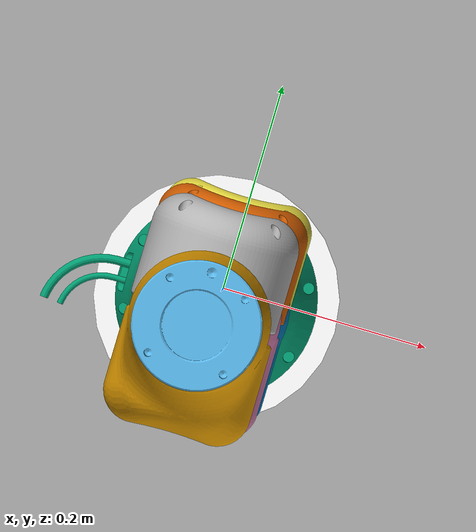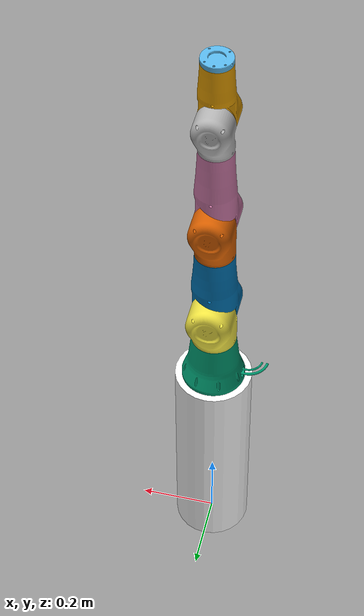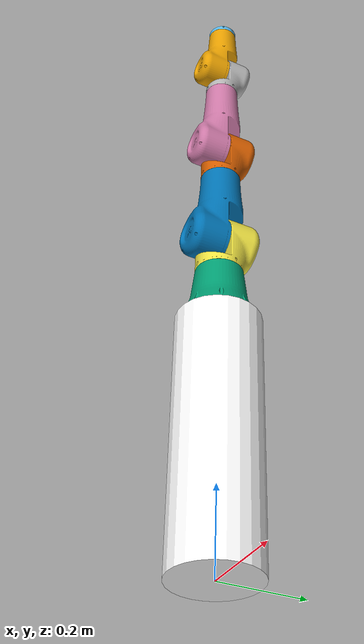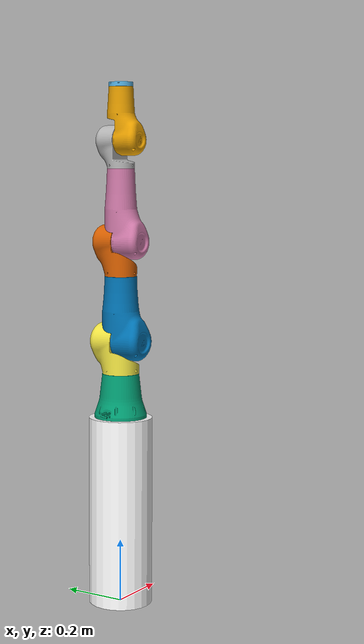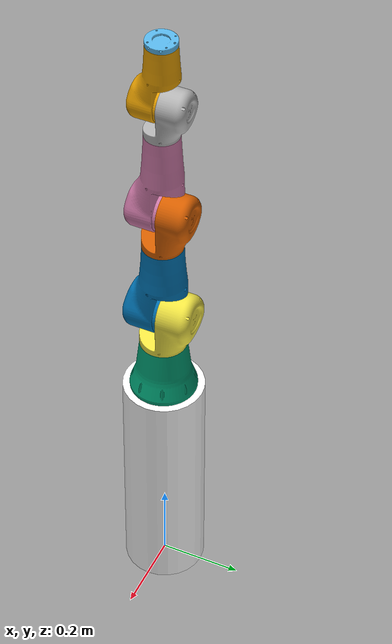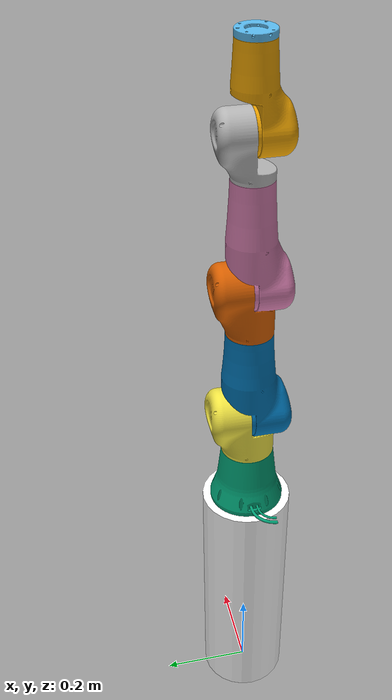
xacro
<?xml version="1.0"?>
<robot name="toroboarm" xmlns:xacro="http://www.ros.org/wiki/xacro">
  <!-- =============== Load Dependencies =============== -->
  <xacro:include filename="$(find toroboarm_seven_description)/urdf/toroboarm.gazebo"/>
  <xacro:include filename="$(find toroboarm_seven_description)/urdf/toroboarm.transmission.xacro"/>

  <!-- =============== Constants =============== -->
  <xacro:property name="M_PI" value="3.1415926535897931"/>

  <!-- =============== Link & Joint =============== -->
  <link name="world"/>

  <joint name="joint_base" type="fixed">
    <origin xyz="0 0 0.3"/>
    <parent link="world"/>
    <child link="base"/>
  </joint>

  <link name="base">
    <visual>
      <geometry>
        <cylinder length="0.6" radius="0.1"/>
      </geometry>
      <material name="white">
        <color rgba="1 1 1 1"/>
      </material>
    </visual>
    <collision>
      <geometry>
        <cylinder length="0.6" radius="0.1" />
      </geometry>
    </collision>
    <inertial>
      <origin xyz="0 0 0.3"/>
      <mass value="1"/>
      <inertia
        ixx="1" ixy="0" ixz="0"
        iyy="1" iyz="0" izz="1"/>
    </inertial>
  </link>

  <joint name="root" type="fixed">
    <origin xyz="0 0 0.3"/>
    <parent link="base"/>
    <child link="link0"/>
  </joint>

  <link name="link0">
    <visual>
      <geometry>
        <mesh filename="package://toroboarm_seven_description/meshes/link0_fixed_axis.dae"/>
      </geometry>
    </visual>
    <collision>
      <geometry>
        <mesh filename="package://toroboarm_seven_description/meshes/link0_fixed_axis.dae"/>
      </geometry>
    </collision>
    <inertial>
      <origin xyz="-0.00019782 -0.00010435 -0.08200349"/>
      <mass value="0.000556532349"/>
      <inertia
        ixx="7.106386719e-7" ixy="-6.3071289e-9" ixz="-9.664139e-10"
        iyy="7.291706055e-7" iyz="-5.514604e-10" izz="12.989606445e-7"/>
    </inertial>
  </link>

  <joint name="first_joint" type="revolute">
    <parent link="link0"/>
    <child link="link1"/>
    <origin xyz="0 0 0.24" rpy="0 0 0"/>
    <axis xyz="0 0 1"/>
    <limit lower="${-160*M_PI/180}" upper="${160*M_PI/180}" effort="60" velocity="${120*M_PI/180}"/>
  </joint>

  <link name="link1">
    <visual>
      <geometry>
        <mesh filename="package://toroboarm_seven_description/meshes/link1_fixed_axis.dae"/>
      </geometry>
    </visual>
    <collision>
      <geometry>
        <mesh filename="package://toroboarm_seven_description/meshes/link1_fixed_axis.dae"/>
      </geometry>
    </collision>
    <inertial>
      <origin xyz="0.00000099 0.00586043 0.01069862"/>
      <mass value="0.001533939453"/>
      <inertia
        ixx="3.9528210938e-6" ixy="0.339023e-10" ixz="0.093167e-10"
        iyy="3.7084527344e-6" iyz="9.61685913e-8" izz="2.6426470703e-6"/>
    </inertial>
  </link>

  <joint name="second_joint" type="revolute">
    <parent link="link1"/>
    <child link="link2"/>
    <origin xyz="0 0 0" rpy="${-90*M_PI/180} 0 0"/>
    <axis xyz="0 0 1"/>
    <limit lower="${-45*M_PI/180}" upper="${105*M_PI/180}" effort="60" velocity="${120*M_PI/180}"/>
  </joint>

  <link name="link2">
    <visual>
      <geometry>
        <mesh filename="package://toroboarm_seven_description/meshes/link2_fixed_axis.dae"/>
      </geometry>
    </visual>
    <collision>
      <geometry>
        <mesh filename="package://toroboarm_seven_description/meshes/link2_fixed_axis.dae"/>
      </geometry>
    </collision>
    <inertial>
      <origin xyz="0.13867682 -0.00000003 0.13671244"/>
      <mass value="0.004087348145"/>
      <inertia
        ixx="8.6736679688e-6" ixy="-0.327858e-10" ixz="1.3874011719e-6"
        iyy="7.27795437500e-5" iyz="0.189328e-10" izz="6.95757250000e-5"/>
    </inertial>
  </link>

  <joint name="third_joint" type="revolute">
    <parent link="link2"/>
    <child link="link3"/>
    <origin xyz="0 -0.31 0" rpy="${90*M_PI/180} 0 0"/>
    <axis xyz="0 0 1"/>
    <limit lower="${-160*M_PI/180}" upper="${160*M_PI/180}" effort="25" velocity="${180*M_PI/180}"/>
  </joint>

  <link name="link3">
    <visual>
      <geometry>
        <mesh filename="package://toroboarm_seven_description/meshes/link3_fixed_axis.dae"/>
      </geometry>
    </visual>
    <collision>
      <geometry>
        <mesh filename="package://toroboarm_seven_description/meshes/link3_fixed_axis.dae"/>
      </geometry>
    </collision>
    <inertial>
      <origin xyz="0.00000013 -0.00239773 0.00513731"/>
      <mass value="0.001273232422"/>
      <inertia
        ixx="3.0814207031e-6" ixy="0.061746e-10" ixz="-0.024647e-10"
        iyy="1.8144869141e-6" iyz="-1.56862595e-8" izz="2.9111501953e-6"/>
    </inertial>
  </link>

  <joint name="fourth_joint" type="revolute">
    <parent link="link3"/>
    <child link="link4"/>
    <origin xyz="0 0 0" rpy="${-90*M_PI/180} 0 0"/>
    <axis xyz="0 0 1"/>
    <limit lower="${-45*M_PI/180}" upper="${105*M_PI/180}" effort="25" velocity="${180*M_PI/180}"/>
  </joint>

  <link name="link4">
    <visual>
      <geometry>
        <mesh filename="package://toroboarm_seven_description/meshes/link4_fixed_axis.dae"/>
      </geometry>
    </visual>
    <collision>
      <geometry>
        <mesh filename="package://toroboarm_seven_description/meshes/link4_fixed_axis.dae"/>
      </geometry>
    </collision>
    <inertial>
      <origin xyz="0.00000001 0.00524430 -0.15712837"/>
      <mass value="0.001405229736"/>
      <inertia
        ixx="1.02374218750e-5" ixy="-0.002806e-10" ixz="-0.018743e-10"
        iyy="9.9758851562e-6" iyz="-1.0365675781e-6" izz="1.4955408203e-6"/>
    </inertial>
  </link>

  <joint name="fifth_joint" type="revolute">
    <parent link="link4"/>
    <child link="link5"/>
    <origin xyz="0 -0.31 0" rpy="${90*M_PI/180} 0 0"/>
    <axis xyz="0 0 1"/>
    <limit lower="${-160*M_PI/180}" upper="${160*M_PI/180}" effort="11" velocity="${180*M_PI/180}"/>
  </joint>

  <link name="link5">
    <visual>
      <geometry>
        <mesh filename="package://toroboarm_seven_description/meshes/link5_fixed_axis.dae"/>
      </geometry>
    </visual>
    <collision>
      <geometry>
        <mesh filename="package://toroboarm_seven_description/meshes/link5_fixed_axis.dae"/>
      </geometry>
    </collision>
    <inertial>
      <origin xyz="-0.00000244 0.02272250 0.00573858"/>
      <mass value="0.000692780090"/>
      <inertia
        ixx="1.4276805664e-6" ixy="0.752651e-10" ixz="-0.177501e-10"
        iyy="7.018117676e-7" iyz="9.03329285e-8" izz="1.1866076172e-6"/>
    </inertial>
  </link>

  <joint name="sixth_joint" type="revolute">
    <parent link="link5"/>
    <child link="link6"/>
    <origin xyz="0 0 0" rpy="${-90*M_PI/180} 0 0"/>
    <axis xyz="0 0 1"/>
    <limit lower="${-90*M_PI/180}" upper="${90*M_PI/180}" effort="11" velocity="${180*M_PI/180}"/>
  </joint>

  <link name="link6">
    <visual>
      <geometry>
        <mesh filename="package://toroboarm_seven_description/meshes/link6_fixed_axis.dae"/>
      </geometry>
    </visual>
    <collision>
      <geometry>
        <mesh filename="package://toroboarm_seven_description/meshes/link6_fixed_axis.dae"/>
      </geometry>
    </collision>
    <inertial>
      <origin xyz="-0.00000000 -0.00000000 -0.11276073"/>
      <mass value="0.000032368717"/>
      <inertia
        ixx="7.8369209e-9" ixy="-0.000000e-10" ixz="0.000011e-10"
        iyy="7.8369209e-9" iyz="0.000012e-10" izz="1.49440048e-8"/>
    </inertial>
  </link>

  <joint name="seventh_joint" type="revolute">
    <parent link="link6"/>
    <child link="link7"/>
    <origin xyz="0 -0.175 0" rpy="${90*M_PI/180} 0 0"/>
    <axis xyz="0 0 1"/>
    <limit lower="${-160*M_PI/180}" upper="${160*M_PI/180}" effort="5" velocity="${180*M_PI/180}"/>
  </joint>

  <link name="link7">
    <visual>
      <geometry>
        <mesh filename="package://toroboarm_seven_description/meshes/link7_fixed_axis.dae"/>
      </geometry>
    </visual>
    <collision>
      <geometry>
        <mesh filename="package://toroboarm_seven_description/meshes/link7_fixed_axis.dae"/>
      </geometry>
    </collision>
    <inertial>
      <origin xyz="-0.00000000 -0.00000000 -0.11276073"/>
      <mass value="0.000032368717"/>
      <inertia
        ixx="7.8369209e-9" ixy="-0.000000e-10" ixz="0.000011e-10"
        iyy="7.8369209e-9" iyz="0.000012e-10" izz="1.49440048e-8"/>
    </inertial>
  </link>

  <!-- =============== Transmission =============== -->
  <arm_simple_transmission name="first" reduction="1"/>
  <arm_simple_transmission name="second" reduction="1"/>
  <arm_simple_transmission name="third" reduction="1"/>
  <arm_simple_transmission name="fourth" reduction="1"/>
  <arm_simple_transmission name="fifth" reduction="1"/>
  <arm_simple_transmission name="sixth" reduction="1"/>
  <arm_simple_transmission name="seventh" reduction="1"/>

</robot>
